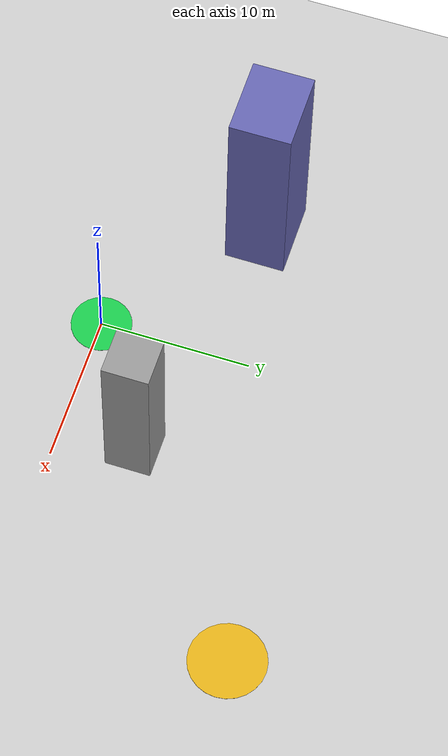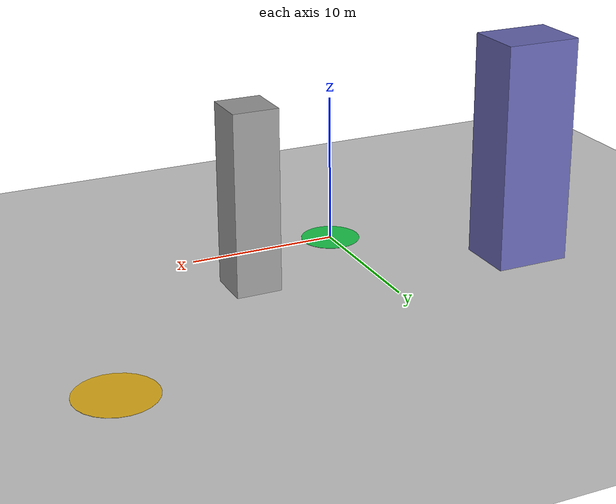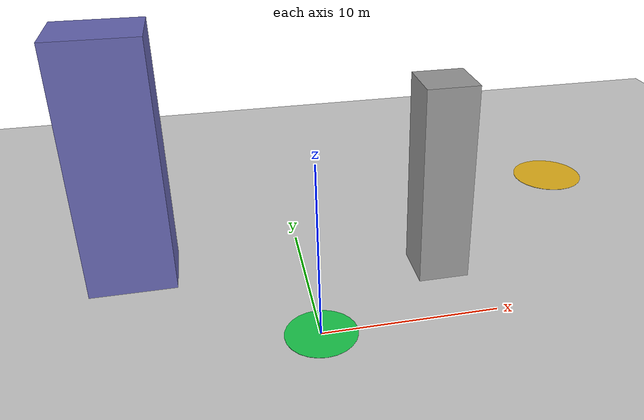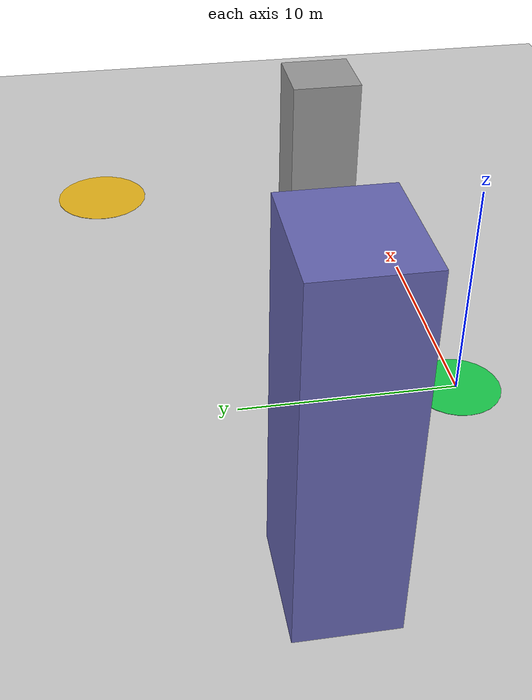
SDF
<?xml version="1.0" ?>
<sdf version="1.6">
  <world name="cyber_drone_world">
    <!-- Physics engine settings -->
    <physics name="1ms" type="ode">
      <max_step_size>0.001</max_step_size>
      <real_time_factor>1.0</real_time_factor>
      <real_time_update_rate>1000</real_time_update_rate>
      <gravity>0 0 -9.80665</gravity>
    </physics>

    <!-- Global Sun Light -->
    <include>
      <uri>model://sun</uri>
    </include>

    <!-- Ground Plane -->
    <include>
      <uri>model://ground_plane</uri>
    </include>

    <!-- Home Takeoff Pad -->
    <model name="home_landing_pad">
      <static>true</static>
      <pose>0 0 0.01 0 0 0</pose>
      <link name="link">
        <visual name="visual">
          <geometry>
            <cylinder>
              <radius>2.0</radius>
              <length>0.02</length>
            </cylinder>
          </geometry>
          <material>
            <ambient>0.1 0.6 0.2 1</ambient>
            <diffuse>0.1 0.8 0.3 1</diffuse>
          </material>
        </visual>
      </link>
    </model>

    <!-- Safe Alternate Landing Pad (for Resilience Failsafe) -->
    <model name="emergency_safe_pad">
      <static>true</static>
      <pose>20 15 0.01 0 0 0</pose>
      <link name="link">
        <visual name="visual">
          <geometry>
            <cylinder>
              <radius>2.5</radius>
              <length>0.02</length>
            </cylinder>
          </geometry>
          <material>
            <ambient>0.8 0.6 0.1 1</ambient>
            <diffuse>0.9 0.7 0.1 1</diffuse>
          </material>
        </visual>
      </link>
    </model>

    <!-- Physical Obstacle 1: Tower -->
    <model name="obstacle_tower_1">
      <static>true</static>
      <pose>8 5 6 0 0 0</pose>
      <link name="link">
        <collision name="collision">
          <geometry>
            <box>
              <size>3.0 3.0 12.0</size>
            </box>
          </geometry>
        </collision>
        <visual name="visual">
          <geometry>
            <box>
              <size>3.0 3.0 12.0</size>
            </box>
          </geometry>
          <material>
            <ambient>0.4 0.4 0.4 1</ambient>
            <diffuse>0.6 0.6 0.6 1</diffuse>
          </material>
        </visual>
      </link>
    </model>

    <!-- Physical Obstacle 2: Building -->
    <model name="obstacle_building_2">
      <static>true</static>
      <pose>-10 8 7.5 0 0 0</pose>
      <link name="link">
        <collision name="collision">
          <geometry>
            <box>
              <size>5.0 4.0 15.0</size>
            </box>
          </geometry>
        </collision>
        <visual name="visual">
          <geometry>
            <box>
              <size>5.0 4.0 15.0</size>
            </box>
          </geometry>
          <material>
            <ambient>0.3 0.3 0.5 1</ambient>
            <diffuse>0.4 0.4 0.7 1</diffuse>
          </material>
        </visual>
      </link>
    </model>
  </world>
</sdf>
